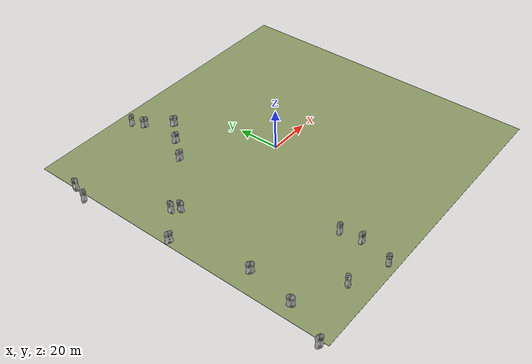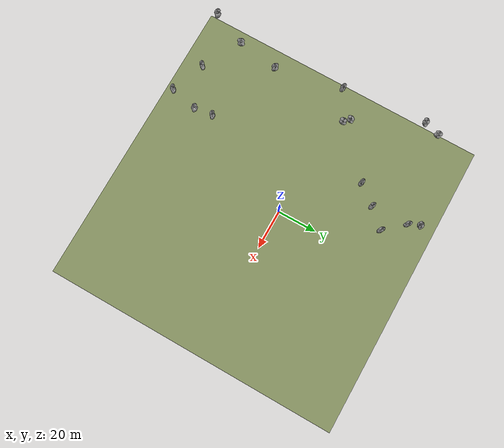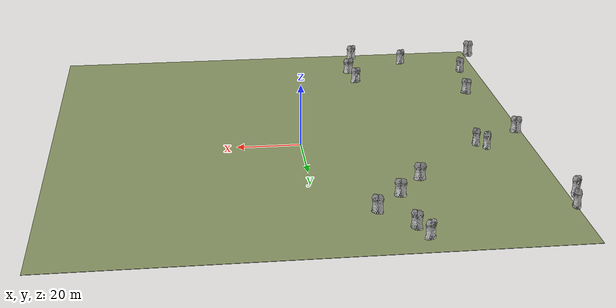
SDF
<sdf version="1.9">
 <world name="default">
  <plugin filename="gz-sim-physics-system" name="gz::sim::systems::Physics"/>
  <plugin filename="gz-sim-scene-broadcaster-system" name="gz::sim::systems::SceneBroadcaster"/>
  <plugin filename="gz-sim-user-commands-system" name="gz::sim::systems::UserCommands"/>
  <plugin filename="gz-sim-sensors-system" name="gz::sim::systems::Sensors">
   <render_engine>ogre2</render_engine>
  </plugin>
  <plugin filename="gz-sim-imu-system" name="gz::sim::systems::Imu"/>
  <plugin filename="gz-sim-air-pressure-system" name="gz::sim::systems::AirPressure"/>
  <plugin filename="gz-sim-navsat-system" name="gz::sim::systems::NavSat"/>
  <spherical_coordinates>
   <surface_model>EARTH_WGS84</surface_model>
   <world_frame_orientation>ENU</world_frame_orientation>
   <latitude_deg>50.450100</latitude_deg>
   <longitude_deg>30.523400</longitude_deg>
   <elevation>180</elevation>
   <heading_deg>0</heading_deg>
  </spherical_coordinates>
  <physics name="default_physics" type="dart">
   <max_step_size>0.004</max_step_size>
   <real_time_factor>1.0</real_time_factor>
   <real_time_update_rate>250</real_time_update_rate>
  </physics>
  <scene><ambient>0.7 0.7 0.7 1</ambient><background>0.7 0.8 0.9 1</background><shadows>true</shadows></scene>
  <light type="directional" name="sun">
   <pose>0 0 200 0 0 0</pose>
   <diffuse>0.8 0.8 0.8 1</diffuse>
   <specular>0.9 0.9 0.9 1</specular>
   <attenuation>
    <range>1000</range>
    <constant>0.9</constant>
    <linear>0.01</linear>
    <quadratic>0.001</quadratic>
   </attenuation>
   <direction>0.2 0.2 -0.9</direction>
  </light>
  <include>
   <static>true</static>
   <name>plane1</name>
   <pose>3 -5 0 0 0 0</pose>
   <uri>model://grass_plane</uri>
  </include>
  <include>
   <name>fire_2</name>
   <static>true</static>
   <pose>-25.56 -52.19 0 0 0 3.452</pose>
   <uri>model://fire</uri>
  </include>
  <include>
   <name>fire_4</name>
   <static>true</static>
   <pose>-74.69 41.18 0 0 0 0.76</pose>
   <uri>model://fire</uri>
  </include>
  <include>
   <name>fire_5</name>
   <static>true</static>
   <pose>-70.53 -2.58 0 0 0 5.973</pose>
   <uri>model://fire</uri>
  </include>
  <include>
   <name>fire_6</name>
   <static>true</static>
   <pose>-65.87 -59.26 0 0 0 1.948</pose>
   <uri>model://fire</uri>
  </include>
  <include>
   <name>fire_7</name>
   <static>true</static>
   <pose>-62.54 -37.71 0 0 0 2.496</pose>
   <uri>model://fire</uri>
  </include>
  <include>
   <name>fire_8</name>
   <static>true</static>
   <pose>-25.12 57.12 0 0 0 5.518</pose>
   <uri>model://fire</uri>
  </include>
  <include>
   <name>fire_9</name>
   <static>true</static>
   <pose>-71.82 49.15 0 0 0 1.414</pose>
   <uri>model://fire</uri>
  </include>
  <include>
   <name>fire_10</name>
   <static>true</static>
   <pose>-28.37 -76.4 0 0 0 0.445</pose>
   <uri>model://fire</uri>
  </include>
  <include>
   <name>fire_11</name>
   <static>true</static>
   <pose>-25.12 -61.93 0 0 0 6.244</pose>
   <uri>model://fire</uri>
  </include>
  <include>
   <name>fire_12</name>
   <static>true</static>
   <pose>-31.6 28.02 0 0 0 2.958</pose>
   <uri>model://fire</uri>
  </include>
  <include>
   <name>fire_13</name>
   <static>true</static>
   <pose>-16.28 47.1 0 0 0 5.654</pose>
   <uri>model://fire</uri>
  </include>
  <include>
   <name>fire_14</name>
   <static>true</static>
   <pose>-45.52 -69.54 0 0 0 3.809</pose>
   <uri>model://fire</uri>
  </include>
  <include>
   <name>fire_15</name>
   <static>true</static>
   <pose>-27.61 62.26 0 0 0 0.648</pose>
   <uri>model://fire</uri>
  </include>
  <include>
   <name>fire_16</name>
   <static>true</static>
   <pose>-74.18 -77.03 0 0 0 5.971</pose>
   <uri>model://fire</uri>
  </include>
  <include>
   <name>fire_18</name>
   <static>true</static>
   <pose>-57.49 8.79 0 0 0 4.541</pose>
   <uri>model://fire</uri>
  </include>
  <include>
   <name>fire_19</name>
   <static>true</static>
   <pose>-23.86 37.75 0 0 0 2.847</pose>
   <uri>model://fire</uri>
  </include>
  <include>
   <name>fire_20</name>
   <static>true</static>
   <pose>-54.85 5.94 0 0 0 4.673</pose>
   <uri>model://fire</uri>
  </include>
 </world>
</sdf>

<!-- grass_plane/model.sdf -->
<sdf version="1.5">
  <model name="grass_plane">
    <static>true</static>
    <link name="link">
      <collision name="collision">
        <geometry>
          <box>
            <size>150 150 .1</size>
          </box>
        </geometry>
      </collision>
      <visual name="visual">
        <cast_shadows>false</cast_shadows>
        <geometry>
          <box>
            <size>150 150 .1</size>
          </box>
        </geometry>
        <material>
          <ambient>0.4 0.45 0.3 1</ambient>
          <diffuse>0.55 0.6 0.4 1</diffuse>
          <specular>0.1 0.1 0.1 1</specular>
          <pbr>
            <metal>
              <albedo_map>materials/textures/grass_dry.png</albedo_map>
              <metalness>0.0</metalness>
              <roughness>1.0</roughness>
            </metal>
          </pbr>
        </material>
      </visual>
    </link>
  </model>
</sdf>

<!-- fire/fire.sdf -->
<sdf version='1.5'>
  <model name='fire'>
    <static>true</static>
      <link name='fire'>
        <pose frame=''>0 0 0 0 0 0</pose>
        <collision name="fire">
          <geometry>
            <box>
              <size>0.01 0.01 0.01</size>
            </box>
          </geometry>
        </collision>
        <visual name='fire'>
        <cast_shadows>false</cast_shadows>
          <geometry>
            <mesh>
              <scale>1 1 1</scale>
              <uri>model://fire/model.dae</uri>
            </mesh>
          </geometry>
          <material>
            <script>
              <name>fire</name>
              <uri>model://fire/model.dae</uri>
            </script>
          </material>
        </visual>
      </link>
  </model>
</sdf>
